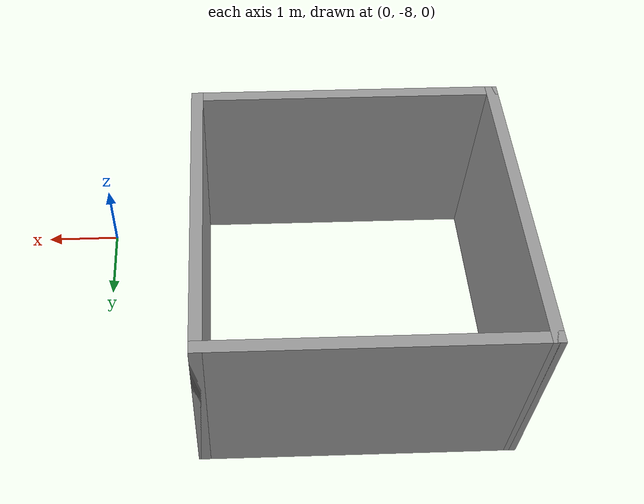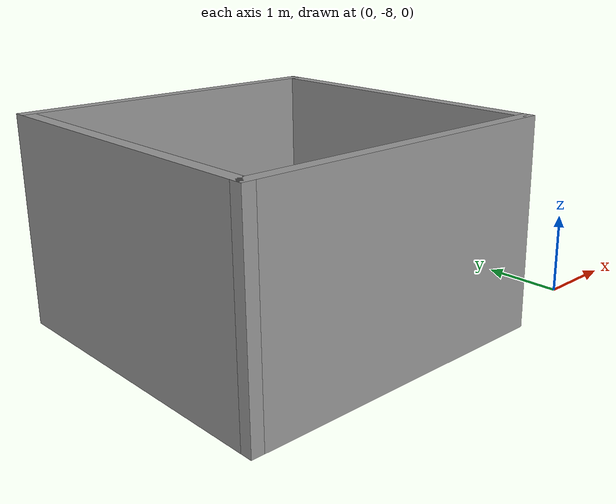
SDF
<?xml version='1.0'?>
<sdf version='1.7'>
  <model name='4square'>
    <pose>-2.62048 -4.18068 0 0 -0 0</pose>
    <link name='Wall_10'>
      <collision name='Wall_10_Collision'>
        <geometry>
          <box>
            <size>4 0.15 2.5</size>
          </box>
        </geometry>
        <pose>0 0 1.25 0 -0 0</pose>
      </collision>
      <visual name='Wall_10_Visual'>
        <pose>0 0 1.25 0 -0 0</pose>
        <geometry>
          <box>
            <size>4 0.15 2.5</size>
          </box>
        </geometry>
        <material>
          <script>
            <uri>file://media/materials/scripts/gazebo.material</uri>
            <name>Gazebo/Grey</name>
          </script>
          <ambient>1 1 1 1</ambient>
        </material>
        <meta>
          <layer>0</layer>
        </meta>
      </visual>
      <pose>-0.620478 -0.25568 0 0 -0 0</pose>
    </link>
    <link name='Wall_11'>
      <collision name='Wall_11_Collision'>
        <geometry>
          <box>
            <size>4 0.15 2.5</size>
          </box>
        </geometry>
        <pose>0 0 1.25 0 -0 0</pose>
      </collision>
      <visual name='Wall_11_Visual'>
        <pose>0 0 1.25 0 -0 0</pose>
        <geometry>
          <box>
            <size>4 0.15 2.5</size>
          </box>
        </geometry>
        <material>
          <script>
            <uri>file://media/materials/scripts/gazebo.material</uri>
            <name>Gazebo/Grey</name>
          </script>
          <ambient>1 1 1 1</ambient>
        </material>
        <meta>
          <layer>0</layer>
        </meta>
      </visual>
      <pose>1.30452 -2.18068 0 0 -0 -1.5708</pose>
    </link>
    <link name='Wall_12'>
      <collision name='Wall_12_Collision'>
        <geometry>
          <box>
            <size>4 0.15 2.5</size>
          </box>
        </geometry>
        <pose>0 0 1.25 0 -0 0</pose>
      </collision>
      <visual name='Wall_12_Visual'>
        <pose>0 0 1.25 0 -0 0</pose>
        <geometry>
          <box>
            <size>4 0.15 2.5</size>
          </box>
        </geometry>
        <material>
          <script>
            <uri>file://media/materials/scripts/gazebo.material</uri>
            <name>Gazebo/Grey</name>
          </script>
          <ambient>1 1 1 1</ambient>
        </material>
        <meta>
          <layer>0</layer>
        </meta>
      </visual>
      <pose>-0.620478 -4.10568 0 0 -0 3.14159</pose>
    </link>
    <link name='Wall_13'>
      <collision name='Wall_13_Collision'>
        <geometry>
          <box>
            <size>4 0.15 2.5</size>
          </box>
        </geometry>
        <pose>0 0 1.25 0 -0 0</pose>
      </collision>
      <visual name='Wall_13_Visual'>
        <pose>0 0 1.25 0 -0 0</pose>
        <geometry>
          <box>
            <size>4 0.15 2.5</size>
          </box>
        </geometry>
        <material>
          <script>
            <uri>file://media/materials/scripts/gazebo.material</uri>
            <name>Gazebo/Grey</name>
          </script>
          <ambient>1 1 1 1</ambient>
        </material>
        <meta>
          <layer>0</layer>
        </meta>
      </visual>
      <pose>-2.54548 -2.18068 0 0 -0 1.5708</pose>
    </link>
    <static>1</static>
  </model>
</sdf>
